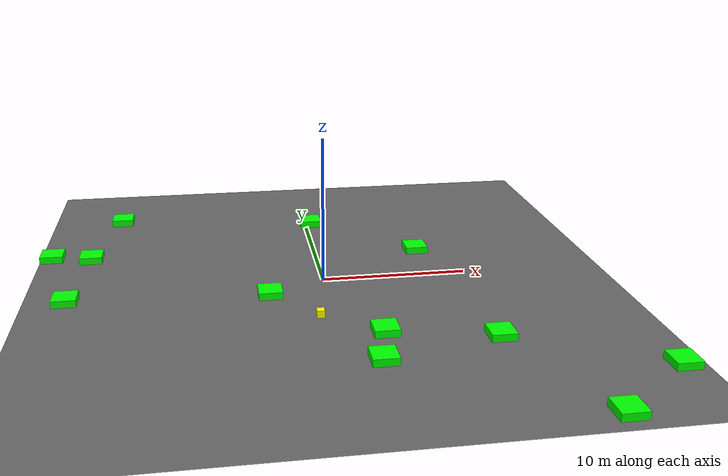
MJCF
<mujoco model="baseline_lvl5_obs12_seed4004">
    <compiler angle="degree" coordinate="local" inertiafromgeom="true"/>
    <option integrator="RK4" timestep="0.01"/>

    <asset>
        <texture builtin="gradient" height="100" rgb1="0.6 0.8 1" rgb2="0 0 0" type="skybox" width="100"/>
        <texture name="floor_texture" type="2d" builtin="checker" width="100" height="100" rgb1="0 0 0" rgb2="0.8 0.8 0.8"/>
        <material name="MatPlane" reflectance="0.5" shininess="1" specular="1" texrepeat="10 10" texture="floor_texture"/>
    </asset>

    <!-- Excluding the contact between the agent and the goal, and the agent and the floor -->
    <contact>
        <exclude body1="agent" body2="goal"/>
        <exclude body1 = "agent" body2 = "floor"/>
    </contact>

    <extension>
        <plugin plugin = "mujoco.pid">
            <instance name = "pid1">
                <config key="kp" value="2"/>
                <config key="ki" value="0"/>
                <config key="kd" value="55"/>
            </instance>
        </plugin>
    </extension>

    <worldbody>
        <light cutoff="100" diffuse="1 1 1" dir="-0 0 -1.3" directional="true" exponent="1" pos="0 0 1.3" specular=".1 .1 .1"/>
        <body name="floor" pos="0 0 0">
            <geom name="floor_geom" type="plane" size="20 20 0.1" material="MatPlane"/>
        </body>

        <!-- Goal -->
        <body name="goal" pos="12.000 -12.000 0">
            <geom name="goal_geom" type="plane" size="0.5 0.5 1" pos="0 0 0" rgba="1 0 0 1"/>
        </body>

        <!-- Agent -->
        <body name="agent" pos="-0.935 -5.570 0.25">
            <joint name="j1" type="slide" axis ="1 0 0 "/>
            <joint name="j2" type="slide" axis ="0 1 0 "/>
            <geom name="agent_geom" type="box" size="0.25 0.25 0.250" rgba="1 1 0 1"/>
        </body>

    <body name="obstacle1" pos="0.400 10.887 0.250">
      <geom name="obstacle1_geom" type="box"
            size="0.800 0.800 0.250"
            rgba="0 1 0 1"/>
    </body>
    <body name="obstacle2" pos="-3.850 -1.994 0.250">
      <geom name="obstacle2_geom" type="box"
            size="0.800 0.800 0.250"
            rgba="0 1 0 1"/>
    </body>
    <body name="obstacle3" pos="-19.142 6.250 0.250">
      <geom name="obstacle3_geom" type="box"
            size="0.800 0.800 0.250"
            rgba="0 1 0 1"/>
    </body>
    <body name="obstacle4" pos="9.490 -9.639 0.250">
      <geom name="obstacle4_geom" type="box"
            size="0.800 0.800 0.250"
            rgba="0 1 0 1"/>
    </body>
    <body name="obstacle5" pos="7.525 4.338 0.250">
      <geom name="obstacle5_geom" type="box"
            size="0.800 0.800 0.250"
            rgba="0 1 0 1"/>
    </body>
    <body name="obstacle6" pos="13.236 -18.503 0.250">
      <geom name="obstacle6_geom" type="box"
            size="0.800 0.800 0.250"
            rgba="0 1 0 1"/>
    </body>
    <body name="obstacle7" pos="-16.294 5.695 0.250">
      <geom name="obstacle7_geom" type="box"
            size="0.800 0.800 0.250"
            rgba="0 1 0 1"/>
    </body>
    <body name="obstacle8" pos="1.917 -11.470 0.250">
      <geom name="obstacle8_geom" type="box"
            size="0.800 0.800 0.250"
            rgba="0 1 0 1"/>
    </body>
    <body name="obstacle9" pos="-14.619 13.246 0.250">
      <geom name="obstacle9_geom" type="box"
            size="0.800 0.800 0.250"
            rgba="0 1 0 1"/>
    </body>
    <body name="obstacle10" pos="2.683 -8.176 0.250">
      <geom name="obstacle10_geom" type="box"
            size="0.800 0.800 0.250"
            rgba="0 1 0 1"/>
    </body>
    <body name="obstacle11" pos="18.635 -14.276 0.250">
      <geom name="obstacle11_geom" type="box"
            size="0.800 0.800 0.250"
            rgba="0 1 0 1"/>
    </body>
    <body name="obstacle12" pos="-17.211 -1.288 0.250">
      <geom name="obstacle12_geom" type="box"
            size="0.800 0.800 0.250"
            rgba="0 1 0 1"/>
    </body>
    </worldbody>

    <actuator>
        <plugin joint="j1" plugin="mujoco.pid" instance="pid1" />
        <plugin joint="j2" plugin="mujoco.pid" instance="pid1"/>
    </actuator>

  <sensor>
    <distance name="dist1" geom1="agent_geom" geom2="obstacle1_geom" cutoff="1.5"/>
    <distance name="dist2" geom1="agent_geom" geom2="obstacle2_geom" cutoff="1.5"/>
    <distance name="dist3" geom1="agent_geom" geom2="obstacle3_geom" cutoff="1.5"/>
    <distance name="dist4" geom1="agent_geom" geom2="obstacle4_geom" cutoff="1.5"/>
    <distance name="dist5" geom1="agent_geom" geom2="obstacle5_geom" cutoff="1.5"/>
    <distance name="dist6" geom1="agent_geom" geom2="obstacle6_geom" cutoff="1.5"/>
    <distance name="dist7" geom1="agent_geom" geom2="obstacle7_geom" cutoff="1.5"/>
    <distance name="dist8" geom1="agent_geom" geom2="obstacle8_geom" cutoff="1.5"/>
    <distance name="dist9" geom1="agent_geom" geom2="obstacle9_geom" cutoff="1.5"/>
    <distance name="dist10" geom1="agent_geom" geom2="obstacle10_geom" cutoff="1.5"/>
    <distance name="dist11" geom1="agent_geom" geom2="obstacle11_geom" cutoff="1.5"/>
    <distance name="dist12" geom1="agent_geom" geom2="obstacle12_geom" cutoff="1.5"/>
  </sensor>
</mujoco>
